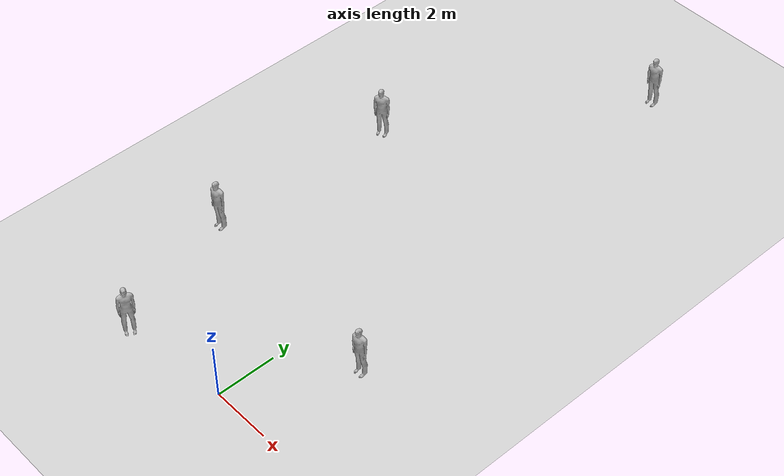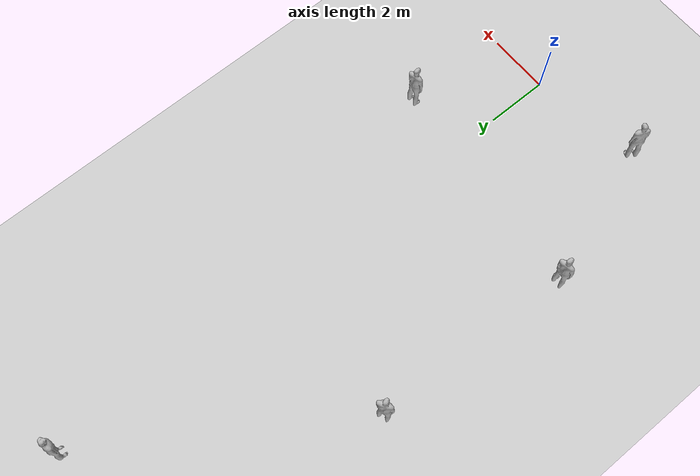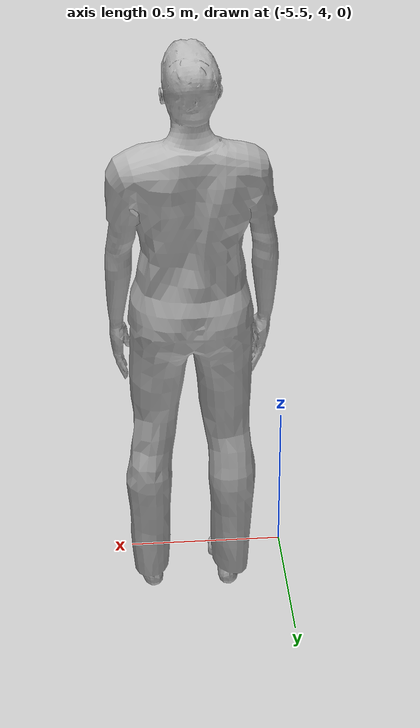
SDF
<sdf version="1.7">
 <world name="default">
  <light name="sun" type="directional">
   <pose>0 0 10 0 -0 0</pose>
   <diffuse>0.8 0.8 0.8 1</diffuse>
   <specular>0.2 0.2 0.2 1</specular>
   <attenuation>
    <range>1000</range>
    <constant>0.9</constant>
    <linear>0.01</linear>
    <quadratic>0.001</quadratic>
   </attenuation>
   <direction>-0.5 0.1 -0.9</direction>
   <spot><inner_angle>0</inner_angle><outer_angle>0</outer_angle><falloff>0</falloff></spot>
  </light>
  <model name="ground_plane">
   <static>1</static>
   <link name="link">
    <collision name="collision">
     <geometry><plane><normal>0 0 1</normal><size>100 100</size></plane></geometry>
     <surface><friction><ode><mu>100</mu><mu2>50</mu2></ode></friction></surface>
    </collision>
    <visual name="visual">
     <cast_shadows>0</cast_shadows>
     <geometry><plane><normal>0 0 1</normal><size>100 100</size></plane></geometry>
     <material>
      <script><uri>file://media/materials/scripts/gazebo.material</uri><name>Gazebo/Grey</name></script>
     </material>
    </visual>
   </link>
  </model>
  <gravity>0 0 -9.8</gravity>
  <magnetic_field>6e-06 2.3e-05 -4.2e-05</magnetic_field>
  <atmosphere type="adiabatic"/>
  <physics type="ode">
   <max_step_size>0.001</max_step_size>
   <real_time_factor>1</real_time_factor>
   <real_time_update_rate>1000</real_time_update_rate>
  </physics>
  <scene><ambient>0.4 0.4 0.4 1</ambient><background>0.7 0.7 0.7 1</background><shadows>1</shadows></scene>
  <audio><device>default</device></audio>
  <spherical_coordinates>
   <surface_model>EARTH_WGS84</surface_model>
   <latitude_deg>0</latitude_deg>
   <longitude_deg>0</longitude_deg>
   <elevation>0</elevation>
   <heading_deg>0</heading_deg>
  </spherical_coordinates>
  <model name="person_standing">
   <link name="link">
    <inertial>
     <pose>0 -0.1 0.95 0 -0 0</pose>
     <mass>80</mass>
     <inertia><ixx>24.88</ixx><ixy>0</ixy><ixz>0</ixz><iyy>25.73</iyy><iyz>0</iyz><izz>2.48</izz></inertia>
    </inertial>
    <collision name="bottom">
     <pose>0 -0.1 0.01 0 -0 0</pose>
     <geometry><box><size>0.5 0.35 0.02</size></box></geometry>
    </collision>
    <collision name="person">
     <pose>0 0 0.02 0.04 -0 0</pose>
     <geometry><mesh><uri>model://person_standing/meshes/standing.dae</uri></mesh></geometry>
    </collision>
    <visual name="visual">
     <pose>0 0 0.02 0.04 -0 0</pose>
     <geometry><mesh><uri>model://person_standing/meshes/standing.dae</uri></mesh></geometry>
    </visual>
   </link>
   <pose>-5.18581 4.25501 -0 1e-06 1e-06 0.000942</pose>
  </model>
  <model name="person_standing_0">
   <link name="link">
    <inertial>
     <pose>0 -0.1 0.95 0 -0 0</pose>
     <mass>80</mass>
     <inertia><ixx>24.88</ixx><ixy>0</ixy><ixz>0</ixz><iyy>25.73</iyy><iyz>0</iyz><izz>2.48</izz></inertia>
    </inertial>
    <collision name="bottom">
     <pose>0 -0.1 0.01 0 -0 0</pose>
     <geometry><box><size>0.5 0.35 0.02</size></box></geometry>
    </collision>
    <collision name="person">
     <pose>0 0 0.02 0.04 -0 0</pose>
     <geometry><mesh><uri>model://person_standing/meshes/standing.dae</uri></mesh></geometry>
    </collision>
    <visual name="visual">
     <pose>0 0 0.02 0.04 -0 0</pose>
     <geometry><mesh><uri>model://person_standing/meshes/standing.dae</uri></mesh></geometry>
    </visual>
   </link>
   <pose>2.1403 3.57467 -0 1e-06 -1e-06 -0.000801</pose>
  </model>
  <model name="person_standing_1">
   <link name="link">
    <inertial>
     <pose>0 -0.1 0.95 0 -0 0</pose>
     <mass>80</mass>
     <inertia><ixx>24.88</ixx><ixy>0</ixy><ixz>0</ixz><iyy>25.73</iyy><iyz>0</iyz><izz>2.48</izz></inertia>
    </inertial>
    <collision name="bottom">
     <pose>0 -0.1 0.01 0 -0 0</pose>
     <geometry><box><size>0.5 0.35 0.02</size></box></geometry>
    </collision>
    <collision name="person">
     <pose>0 0 0.02 0.04 -0 0</pose>
     <geometry><mesh><uri>model://person_standing/meshes/standing.dae</uri></mesh></geometry>
    </collision>
    <visual name="visual">
     <pose>0 0 0.02 0.04 -0 0</pose>
     <geometry><mesh><uri>model://person_standing/meshes/standing.dae</uri></mesh></geometry>
    </visual>
   </link>
   <pose>-3.66481 -0.423665 -0 0 1e-06 1.07256</pose>
  </model>
  <model name="person_standing_2">
   <link name="link">
    <inertial>
     <pose>0 -0.1 0.95 0 -0 0</pose>
     <mass>80</mass>
     <inertia><ixx>24.88</ixx><ixy>0</ixy><ixz>0</ixz><iyy>25.73</iyy><iyz>0</iyz><izz>2.48</izz></inertia>
    </inertial>
    <collision name="bottom">
     <pose>0 -0.1 0.01 0 -0 0</pose>
     <geometry><box><size>0.5 0.35 0.02</size></box></geometry>
    </collision>
    <collision name="person">
     <pose>0 0 0.02 0.04 -0 0</pose>
     <geometry><mesh><uri>model://person_standing/meshes/standing.dae</uri></mesh></geometry>
    </collision>
    <visual name="visual">
     <pose>0 0 0.02 0.04 -0 0</pose>
     <geometry><mesh><uri>model://person_standing/meshes/standing.dae</uri></mesh></geometry>
    </visual>
   </link>
   <pose>-4.9457 10.766 -0 0 -1e-06 0.363955</pose>
  </model>
  <model name="person_standing_3">
   <link name="link">
    <inertial>
     <pose>0 -0.1 0.95 0 -0 0</pose>
     <mass>80</mass>
     <inertia><ixx>24.88</ixx><ixy>0</ixy><ixz>0</ixz><iyy>25.73</iyy><iyz>0</iyz><izz>2.48</izz></inertia>
    </inertial>
    <collision name="bottom">
     <pose>0 -0.1 0.01 0 -0 0</pose>
     <geometry><box><size>0.5 0.35 0.02</size></box></geometry>
    </collision>
    <collision name="person">
     <pose>0 0 0.02 0.04 -0 0</pose>
     <geometry><mesh><uri>model://person_standing/meshes/standing.dae</uri></mesh></geometry>
    </collision>
    <visual name="visual">
     <pose>0 0 0.02 0.04 -0 0</pose>
     <geometry><mesh><uri>model://person_standing/meshes/standing.dae</uri></mesh></geometry>
    </visual>
   </link>
   <pose>0.051573 18.3797 -0 -1e-06 1e-06 -0.000133</pose>
  </model>
 </world>
</sdf>
